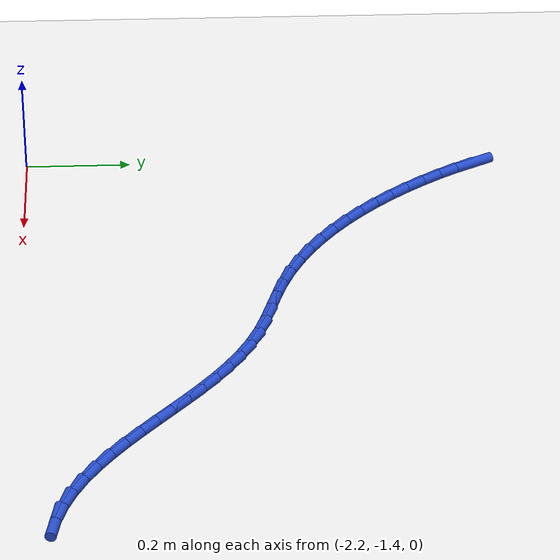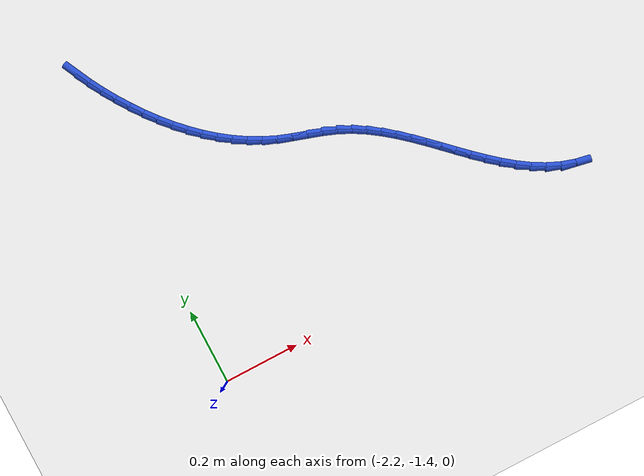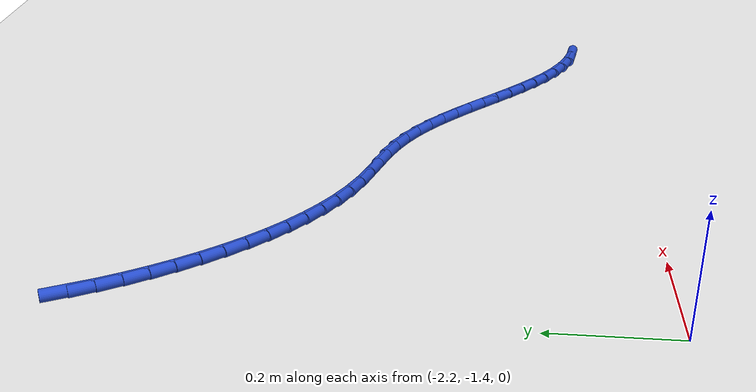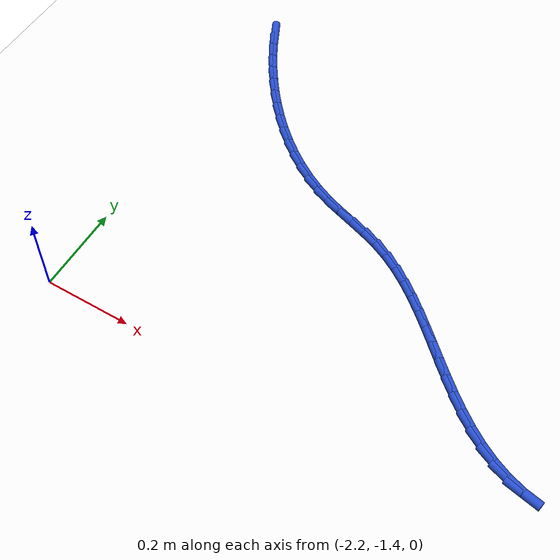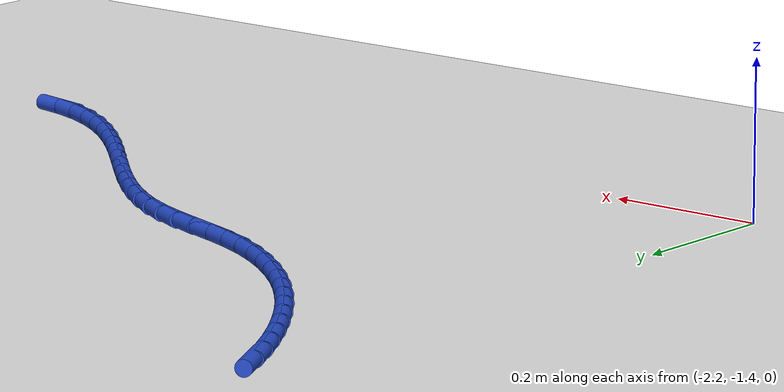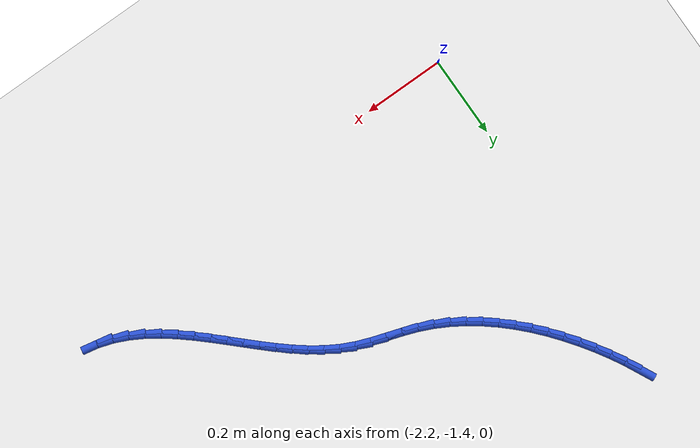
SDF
<sdf version="1.6">
 <world name="default">
  <model name="ground_plane">
   <static>1</static>
   <link name="link">
    <collision name="collision">
     <geometry><plane><normal>0 0 1</normal><size>100 100</size></plane></geometry>
     <surface><friction><ode><mu>100</mu><mu2>50</mu2></ode></friction></surface>
    </collision>
    <visual name="visual">
     <cast_shadows>0</cast_shadows>
     <geometry><plane><normal>0 0 1</normal><size>100 100</size></plane></geometry>
     <material>
      <script><uri>file://media/materials/scripts/gazebo.material</uri><name>Gazebo/WhiteGlow</name></script>
     </material>
    </visual>
   </link>
  </model>
  <model name="line">
   <link name="link_126">
    <pose>-2.1711426924228934 -0.5322830208562094 0.01 0 1.57 -1.113727800638902</pose>
    <collision name="collision">
     <geometry><cylinder><radius>0.01</radius><length>0.08</length></cylinder></geometry>
    </collision>
    <visual name="visual">
     <material>
      <script><name>Gazebo/Blue</name><uri>file://media/materials/scripts/gazebo.material</uri></script>
     </material>
     <geometry><cylinder><radius>0.01</radius><length>0.08</length></cylinder></geometry>
    </visual>
   </link>
   <link name="link_127">
    <pose>-2.1540226158130924 -0.567093863548066 0.01 0 1.57 -1.0607933230878817</pose>
    <collision name="collision">
     <geometry><cylinder><radius>0.01</radius><length>0.08</length></cylinder></geometry>
    </collision>
    <visual name="visual">
     <material>
      <script><name>Gazebo/Blue</name><uri>file://media/materials/scripts/gazebo.material</uri></script>
     </material>
     <geometry><cylinder><radius>0.01</radius><length>0.08</length></cylinder></geometry>
    </visual>
   </link>
   <link name="link_128">
    <pose>-2.134892784801626 -0.6012931986270718 0.01 0 1.57 -1.0167695374762997</pose>
    <collision name="collision">
     <geometry><cylinder><radius>0.01</radius><length>0.08</length></cylinder></geometry>
    </collision>
    <visual name="visual">
     <material>
      <script><name>Gazebo/Blue</name><uri>file://media/materials/scripts/gazebo.material</uri></script>
     </material>
     <geometry><cylinder><radius>0.01</radius><length>0.08</length></cylinder></geometry>
    </visual>
   </link>
   <link name="link_129">
    <pose>-2.1141452090106907 -0.6348295443960656 0.01 0 1.57 -0.9780835332370027</pose>
    <collision name="collision">
     <geometry><cylinder><radius>0.01</radius><length>0.08</length></cylinder></geometry>
    </collision>
    <visual name="visual">
     <material>
      <script><name>Gazebo/Blue</name><uri>file://media/materials/scripts/gazebo.material</uri></script>
     </material>
     <geometry><cylinder><radius>0.01</radius><length>0.08</length></cylinder></geometry>
    </visual>
   </link>
   <link name="link_130">
    <pose>-2.0920635795251425 -0.6676163294900402 0.01 0 1.57 -0.9379119786317509</pose>
    <collision name="collision">
     <geometry><cylinder><radius>0.01</radius><length>0.08</length></cylinder></geometry>
    </collision>
    <visual name="visual">
     <material>
      <script><name>Gazebo/Blue</name><uri>file://media/materials/scripts/gazebo.material</uri></script>
     </material>
     <geometry><cylinder><radius>0.01</radius><length>0.08</length></cylinder></geometry>
    </visual>
   </link>
   <link name="link_131">
    <pose>-2.0686850309980733 -0.6994871108663514 0.01 0 1.57 -0.895052886188401</pose>
    <collision name="collision">
     <geometry><cylinder><radius>0.01</radius><length>0.08</length></cylinder></geometry>
    </collision>
    <visual name="visual">
     <material>
      <script><name>Gazebo/Blue</name><uri>file://media/materials/scripts/gazebo.material</uri></script>
     </material>
     <geometry><cylinder><radius>0.01</radius><length>0.08</length></cylinder></geometry>
    </visual>
   </link>
   <link name="link_132">
    <pose>-2.0440125671694656 -0.7302643888115992 0.01 0 1.57 -0.8491824743767806</pose>
    <collision name="collision">
     <geometry><cylinder><radius>0.01</radius><length>0.08</length></cylinder></geometry>
    </collision>
    <visual name="visual">
     <material>
      <script><name>Gazebo/Blue</name><uri>file://media/materials/scripts/gazebo.material</uri></script>
     </material>
     <geometry><cylinder><radius>0.01</radius><length>0.08</length></cylinder></geometry>
    </visual>
   </link>
   <link name="link_133">
    <pose>-2.018049191779305 -0.7597706636123814 0.01 0 1.57 -0.7999786254515602</pose>
    <collision name="collision">
     <geometry><cylinder><radius>0.01</radius><length>0.08</length></cylinder></geometry>
    </collision>
    <visual name="visual">
     <material>
      <script><name>Gazebo/Blue</name><uri>file://media/materials/scripts/gazebo.material</uri></script>
     </material>
     <geometry><cylinder><radius>0.01</radius><length>0.08</length></cylinder></geometry>
    </visual>
   </link>
   <link name="link_134">
    <pose>-1.9907979085675749 -0.7878284355552984 0.01 0 1.57 -0.7471324026752533</pose>
    <collision name="collision">
     <geometry><cylinder><radius>0.01</radius><length>0.08</length></cylinder></geometry>
    </collision>
    <visual name="visual">
     <material>
      <script><name>Gazebo/Blue</name><uri>file://media/materials/scripts/gazebo.material</uri></script>
     </material>
     <geometry><cylinder><radius>0.01</radius><length>0.08</length></cylinder></geometry>
    </visual>
   </link>
   <link name="link_135">
    <pose>-1.962261721274261 -0.8142602049269494 0.01 0 1.57 -0.6903653980626783</pose>
    <collision name="collision">
     <geometry><cylinder><radius>0.01</radius><length>0.08</length></cylinder></geometry>
    </collision>
    <visual name="visual">
     <material>
      <script><name>Gazebo/Blue</name><uri>file://media/materials/scripts/gazebo.material</uri></script>
     </material>
     <geometry><cylinder><radius>0.01</radius><length>0.08</length></cylinder></geometry>
    </visual>
   </link>
   <link name="link_136">
    <pose>-1.9324436336393467 -0.8388884720139337 0.01 0 1.57 -0.6294538026285105</pose>
    <collision name="collision">
     <geometry><cylinder><radius>0.01</radius><length>0.08</length></cylinder></geometry>
    </collision>
    <visual name="visual">
     <material>
      <script><name>Gazebo/Blue</name><uri>file://media/materials/scripts/gazebo.material</uri></script>
     </material>
     <geometry><cylinder><radius>0.01</radius><length>0.08</length></cylinder></geometry>
    </visual>
   </link>
   <link name="link_137">
    <pose>-1.901346649402817 -0.8615357371028506 0.01 0 1.57 -0.5642593812056981</pose>
    <collision name="collision">
     <geometry><cylinder><radius>0.01</radius><length>0.08</length></cylinder></geometry>
    </collision>
    <visual name="visual">
     <material>
      <script><name>Gazebo/Blue</name><uri>file://media/materials/scripts/gazebo.material</uri></script>
     </material>
     <geometry><cylinder><radius>0.01</radius><length>0.08</length></cylinder></geometry>
    </visual>
   </link>
   <link name="link_138">
    <pose>-1.8689737723046553 -0.8820245004803005 0.01 0 1.57 -0.49476611858729214</pose>
    <collision name="collision">
     <geometry><cylinder><radius>0.01</radius><length>0.08</length></cylinder></geometry>
    </collision>
    <visual name="visual">
     <material>
      <script><name>Gazebo/Blue</name><uri>file://media/materials/scripts/gazebo.material</uri></script>
     </material>
     <geometry><cylinder><radius>0.01</radius><length>0.08</length></cylinder></geometry>
    </visual>
   </link>
   <link name="link_139">
    <pose>-1.8353280060848485 -0.9001772624328811 0.01 0 1.57 -0.4211190852401863</pose>
    <collision name="collision">
     <geometry><cylinder><radius>0.01</radius><length>0.08</length></cylinder></geometry>
    </collision>
    <visual name="visual">
     <material>
      <script><name>Gazebo/Blue</name><uri>file://media/materials/scripts/gazebo.material</uri></script>
     </material>
     <geometry><cylinder><radius>0.01</radius><length>0.08</length></cylinder></geometry>
    </visual>
   </link>
   <link name="link_140">
    <pose>-1.8004123544833792 -0.9158165232471929 0.01 0 1.57 -0.3501542584782806</pose>
    <collision name="collision">
     <geometry><cylinder><radius>0.01</radius><length>0.08</length></cylinder></geometry>
    </collision>
    <visual name="visual">
     <material>
      <script><name>Gazebo/Blue</name><uri>file://media/materials/scripts/gazebo.material</uri></script>
     </material>
     <geometry><cylinder><radius>0.01</radius><length>0.08</length></cylinder></geometry>
    </visual>
   </link>
   <link name="link_141">
    <pose>-1.7643349650632492 -0.9289921055483163 0.01 0 1.57 -0.3124167182503734</pose>
    <collision name="collision">
     <geometry><cylinder><radius>0.01</radius><length>0.08</length></cylinder></geometry>
    </collision>
    <visual name="visual">
     <material>
      <script><name>Gazebo/Blue</name><uri>file://media/materials/scripts/gazebo.material</uri></script>
     </material>
     <geometry><cylinder><radius>0.01</radius><length>0.08</length></cylinder></geometry>
    </visual>
   </link>
   <link name="link_142">
    <pose>-1.7276995039384302 -0.9408251496339815 0.01 0 1.57 -0.3162815238252821</pose>
    <collision name="collision">
     <geometry><cylinder><radius>0.01</radius><length>0.08</length></cylinder></geometry>
    </collision>
    <visual name="visual">
     <material>
      <script><name>Gazebo/Blue</name><uri>file://media/materials/scripts/gazebo.material</uri></script>
     </material>
     <geometry><cylinder><radius>0.01</radius><length>0.08</length></cylinder></geometry>
    </visual>
   </link>
   <link name="link_143">
    <pose>-1.691255475645262 -0.952752100403384 0.01 0 1.57 -0.36231433102012295</pose>
    <collision name="collision">
     <geometry><cylinder><radius>0.01</radius><length>0.08</length></cylinder></geometry>
    </collision>
    <visual name="visual">
     <material>
      <script><name>Gazebo/Blue</name><uri>file://media/materials/scripts/gazebo.material</uri></script>
     </material>
     <geometry><cylinder><radius>0.01</radius><length>0.08</length></cylinder></geometry>
    </visual>
   </link>
   <link name="link_144">
    <pose>-1.655752404934852 -0.9662094464603168 0.01 0 1.57 -0.44633299815374017</pose>
    <collision name="collision">
     <geometry><cylinder><radius>0.01</radius><length>0.08</length></cylinder></geometry>
    </collision>
    <visual name="visual">
     <material>
      <script><name>Gazebo/Blue</name><uri>file://media/materials/scripts/gazebo.material</uri></script>
     </material>
     <geometry><cylinder><radius>0.01</radius><length>0.08</length></cylinder></geometry>
    </visual>
   </link>
   <link name="link_145">
    <pose>-1.6218352171931185 -0.9824401901818463 0.01 0 1.57 -0.5322007102713809</pose>
    <collision name="collision">
     <geometry><cylinder><radius>0.01</radius><length>0.08</length></cylinder></geometry>
    </collision>
    <visual name="visual">
     <material>
      <script><name>Gazebo/Blue</name><uri>file://media/materials/scripts/gazebo.material</uri></script>
     </material>
     <geometry><cylinder><radius>0.01</radius><length>0.08</length></cylinder></geometry>
    </visual>
   </link>
   <link name="link_146">
    <pose>-1.5894977582621423 -1.0014829774557736 0.01 0 1.57 -0.6046641189170829</pose>
    <collision name="collision">
     <geometry><cylinder><radius>0.01</radius><length>0.08</length></cylinder></geometry>
    </collision>
    <visual name="visual">
     <material>
      <script><name>Gazebo/Blue</name><uri>file://media/materials/scripts/gazebo.material</uri></script>
     </material>
     <geometry><cylinder><radius>0.01</radius><length>0.08</length></cylinder></geometry>
    </visual>
   </link>
   <link name="link_147">
    <pose>-1.5584837741864273 -1.0229138235788755 0.01 0 1.57 -0.6631542402486719</pose>
    <collision name="collision">
     <geometry><cylinder><radius>0.01</radius><length>0.08</length></cylinder></geometry>
    </collision>
    <visual name="visual">
     <material>
      <script><name>Gazebo/Blue</name><uri>file://media/materials/scripts/gazebo.material</uri></script>
     </material>
     <geometry><cylinder><radius>0.01</radius><length>0.08</length></cylinder></geometry>
    </visual>
   </link>
   <link name="link_148">
    <pose>-1.5285364931276553 -1.0463077858765955 0.01 0 1.57 -0.7077801541324612</pose>
    <collision name="collision">
     <geometry><cylinder><radius>0.01</radius><length>0.08</length></cylinder></geometry>
    </collision>
    <visual name="visual">
     <material>
      <script><name>Gazebo/Blue</name><uri>file://media/materials/scripts/gazebo.material</uri></script>
     </material>
     <geometry><cylinder><radius>0.01</radius><length>0.08</length></cylinder></geometry>
    </visual>
   </link>
   <link name="link_149">
    <pose>-1.499399143247509 -1.0712399216743784 0.01 0 1.57 -0.7389581290104372</pose>
    <collision name="collision">
     <geometry><cylinder><radius>0.01</radius><length>0.08</length></cylinder></geometry>
    </collision>
    <visual name="visual">
     <material>
      <script><name>Gazebo/Blue</name><uri>file://media/materials/scripts/gazebo.material</uri></script>
     </material>
     <geometry><cylinder><radius>0.01</radius><length>0.08</length></cylinder></geometry>
    </visual>
   </link>
   <link name="link_150">
    <pose>-1.4708149527076706 -1.0972852882976691 0.01 0 1.57 -0.7571594507583644</pose>
    <collision name="collision">
     <geometry><cylinder><radius>0.01</radius><length>0.08</length></cylinder></geometry>
    </collision>
    <visual name="visual">
     <material>
      <script><name>Gazebo/Blue</name><uri>file://media/materials/scripts/gazebo.material</uri></script>
     </material>
     <geometry><cylinder><radius>0.01</radius><length>0.08</length></cylinder></geometry>
    </visual>
   </link>
   <link name="link_151">
    <pose>-1.442527149669822 -1.124018943071912 0.01 0 1.57 -0.7627541409848642</pose>
    <collision name="collision">
     <geometry><cylinder><radius>0.01</radius><length>0.08</length></cylinder></geometry>
    </collision>
    <visual name="visual">
     <material>
      <script><name>Gazebo/Blue</name><uri>file://media/materials/scripts/gazebo.material</uri></script>
     </material>
     <geometry><cylinder><radius>0.01</radius><length>0.08</length></cylinder></geometry>
    </visual>
   </link>
   <link name="link_152">
    <pose>-1.4142789622956462 -1.1510159433225509 0.01 0 1.57 -0.7559325801420845</pose>
    <collision name="collision">
     <geometry><cylinder><radius>0.01</radius><length>0.08</length></cylinder></geometry>
    </collision>
    <visual name="visual">
     <material>
      <script><name>Gazebo/Blue</name><uri>file://media/materials/scripts/gazebo.material</uri></script>
     </material>
     <geometry><cylinder><radius>0.01</radius><length>0.08</length></cylinder></geometry>
    </visual>
   </link>
   <link name="link_153">
    <pose>-1.3858136187468262 -1.1778513463750306 0.01 0 1.57 -0.7366869659360116</pose>
    <collision name="collision">
     <geometry><cylinder><radius>0.01</radius><length>0.08</length></cylinder></geometry>
    </collision>
    <visual name="visual">
     <material>
      <script><name>Gazebo/Blue</name><uri>file://media/materials/scripts/gazebo.material</uri></script>
     </material>
     <geometry><cylinder><radius>0.01</radius><length>0.08</length></cylinder></geometry>
    </visual>
   </link>
   <link name="link_154">
    <pose>-1.3568743471850429 -1.2041002095547952 0.01 0 1.57 -0.7048286083605965</pose>
    <collision name="collision">
     <geometry><cylinder><radius>0.01</radius><length>0.08</length></cylinder></geometry>
    </collision>
    <visual name="visual">
     <material>
      <script><name>Gazebo/Blue</name><uri>file://media/materials/scripts/gazebo.material</uri></script>
     </material>
     <geometry><cylinder><radius>0.01</radius><length>0.08</length></cylinder></geometry>
    </visual>
   </link>
   <link name="link_155">
    <pose>-1.3272044873139393 -1.2293366926324192 0.01 0 1.57 -0.659008429654223</pose>
    <collision name="collision">
     <geometry><cylinder><radius>0.01</radius><length>0.08</length></cylinder></geometry>
    </collision>
    <visual name="visual">
     <material>
      <script><name>Gazebo/Blue</name><uri>file://media/materials/scripts/gazebo.material</uri></script>
     </material>
     <geometry><cylinder><radius>0.01</radius><length>0.08</length></cylinder></geometry>
    </visual>
   </link>
   <link name="link_156">
    <pose>-1.296554777044216 -1.253075423550344 0.01 0 1.57 -0.5969705765664582</pose>
    <collision name="collision">
     <geometry><cylinder><radius>0.01</radius><length>0.08</length></cylinder></geometry>
    </collision>
    <visual name="visual">
     <material>
      <script><name>Gazebo/Blue</name><uri>file://media/materials/scripts/gazebo.material</uri></script>
     </material>
     <geometry><cylinder><radius>0.01</radius><length>0.08</length></cylinder></geometry>
    </visual>
   </link>
   <link name="link_157">
    <pose>-1.2646878468092133 -1.2747353336034126 0.01 0 1.57 -0.5180395615819019</pose>
    <collision name="collision">
     <geometry><cylinder><radius>0.01</radius><length>0.08</length></cylinder></geometry>
    </collision>
    <visual name="visual">
     <material>
      <script><name>Gazebo/Blue</name><uri>file://media/materials/scripts/gazebo.material</uri></script>
     </material>
     <geometry><cylinder><radius>0.01</radius><length>0.08</length></cylinder></geometry>
    </visual>
   </link>
   <link name="link_158">
    <pose>-1.231367401430148 -1.2937267087114617 0.01 0 1.57 -0.42234337972777997</pose>
    <collision name="collision">
     <geometry><cylinder><radius>0.01</radius><length>0.08</length></cylinder></geometry>
    </collision>
    <visual name="visual">
     <material>
      <script><name>Gazebo/Blue</name><uri>file://media/materials/scripts/gazebo.material</uri></script>
     </material>
     <geometry><cylinder><radius>0.01</radius><length>0.08</length></cylinder></geometry>
    </visual>
   </link>
   <link name="link_159">
    <pose>-1.1963571457282356 -1.3094598347943291 0.01 0 1.57 -0.3113117963411828</pose>
    <collision name="collision">
     <geometry><cylinder><radius>0.01</radius><length>0.08</length></cylinder></geometry>
    </collision>
    <visual name="visual">
     <material>
      <script><name>Gazebo/Blue</name><uri>file://media/materials/scripts/gazebo.material</uri></script>
     </material>
     <geometry><cylinder><radius>0.01</radius><length>0.08</length></cylinder></geometry>
    </visual>
   </link>
   <link name="link_160">
    <pose>-1.1594208045355352 -1.3213450080058469 0.01 0 1.57 -0.1920401517922632</pose>
    <collision name="collision">
     <geometry><cylinder><radius>0.01</radius><length>0.08</length></cylinder></geometry>
    </collision>
    <visual name="visual">
     <material>
      <script><name>Gazebo/Blue</name><uri>file://media/materials/scripts/gazebo.material</uri></script>
     </material>
     <geometry><cylinder><radius>0.01</radius><length>0.08</length></cylinder></geometry>
    </visual>
   </link>
  </model>
 </world>
</sdf>
